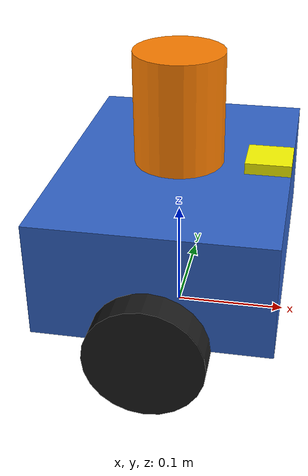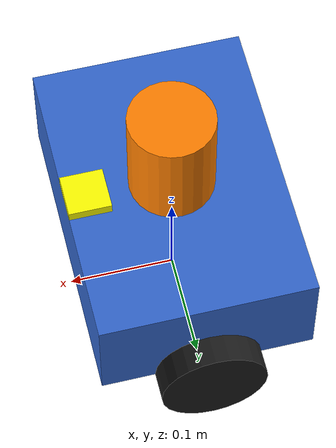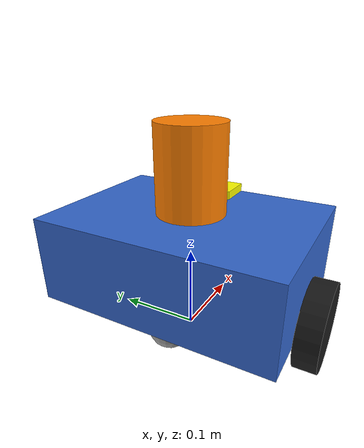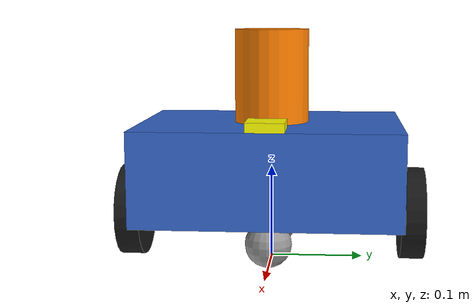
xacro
<?xml version="1.0"?>
<robot name="diff-drive-bot" xmlns:xacro="http://www.ros.org/wiki/xacro">

    <xacro:include filename="$(find robot_description)/urdf/properties.xacro" />
    <xacro:include filename="$(find robot_description)/urdf/inertia.xacro" />

    <!-- LINKS -->
    <link name="base_footprint" />
    <link name="base_link">
        <visual>
            <origin xyz="0 0 ${chassis_height/2}" rpy="0 0 0" />
            <geometry>
                <box size="${chassis_length} ${chassis_width} ${chassis_height}" />
            </geometry>
            <material name="blue_acrylic" />
        </visual>
        <collision>
            <origin xyz="0 0 ${chassis_height/2}" rpy="0 0 0" />
            <geometry>
                <box size="${chassis_length} ${chassis_width} ${chassis_height}" />
            </geometry>
        </collision>
        <xacro:box_inertia m="${chassis_mass}"
                            x="${chassis_length}"
                            y="${chassis_width}"
                            z="${chassis_height}" />
    </link>

    <link name="left_wheel_link">
        <visual>
            <origin xyz="0 0 0" rpy="${pi/2} 0 0" />
            <geometry>
                <cylinder radius="${wheel_radius}" length="${wheel_width}" />
            </geometry>
            <material name="black_rubber" />
        </visual>
        <collision>
            <origin xyz="0 0 0" rpy="${pi/2} 0 0" />
            <geometry>
                <cylinder radius="${wheel_radius}" length="${wheel_width}" />
            </geometry>
        </collision>
        <xacro:wheel_inertia m="${wheel_mass}" r="${wheel_radius}" h="${wheel_width}" />
    </link>

    <link name="right_wheel_link">
        <visual>
            <origin xyz="0 0 0" rpy="${pi/2} 0 0" />
            <geometry>
                <cylinder radius="${wheel_radius}" length="${wheel_width}" />
            </geometry>
            <material name="black_rubber" />
        </visual>
        <collision>
            <origin xyz="0 0 0" rpy="${pi/2} 0 0" />
            <geometry>
                <cylinder radius="${wheel_radius}" length="${wheel_width}" />
            </geometry>
        </collision>
        <xacro:wheel_inertia m="${wheel_mass}" r="${wheel_radius}" h="${wheel_width}" />
    </link>

    <link name="front_caster_wheel_link">
        <visual>
            <origin xyz="0 0 0" rpy="0 0 0" />
            <geometry>
                <sphere radius="${caster_radius}" />
            </geometry>
            <material name="grey_caster" />
        </visual>
        <collision>
            <origin xyz="0 0 0" rpy="0 0 0" />
            <geometry>
                <sphere radius="${caster_radius}" />
            </geometry>
        </collision>
        <xacro:sphere_inertia m="${caster_mass}" r="${caster_radius}" />
    </link>

    <link name="rear_caster_wheel_link">
        <visual>
            <origin xyz="0 0 0" rpy="0 0 0" />
            <geometry>
                <sphere radius="${caster_radius}" />
            </geometry>
            <material name="grey_caster" />
        </visual>
        <collision>
            <origin xyz="0 0 0" rpy="0 0 0" />
            <geometry>
                <sphere radius="${caster_radius}" />
            </geometry>
        </collision>
        <xacro:sphere_inertia m="${caster_mass}" r="${caster_radius}" />
    </link>

    <!-- JOINTS -->
    <joint name="base_to_footprint" type="fixed">
        <parent link="base_footprint"/>
        <child link="base_link"/>
        <origin xyz="0 0 ${wheel_radius}" rpy="0 0 0"/>
    </joint>

    <joint name="base_to_left_wheel_joint" type="continuous">
        <parent link="base_link"/>
        <child link="left_wheel_link"/>
        <origin xyz="0 ${chassis_width/2+wheel_width/2} 0" rpy="0 0 0"/>
        <axis xyz="0 1 0"/>
    </joint>

    <joint name="base_to_right_wheel_joint" type="continuous">
        <parent link="base_link"/>
        <child link="right_wheel_link"/>
        <origin xyz="0 ${-chassis_width/2-wheel_width/2} 0" rpy="0 0 0"/>
        <axis xyz="0 1 0"/>
    </joint>

    <joint name="base_to_front_caster_wheel_joint" type="fixed">
        <parent link="base_link"/>
        <child link="front_caster_wheel_link"/>
        <origin xyz="${chassis_length/4} 0 ${-caster_radius}" rpy="0 0 0"/>
    </joint>

    <joint name="base_to_rear_caster_wheel_joint" type="fixed">
        <parent link="base_link"/>
        <child link="rear_caster_wheel_link"/>
        <origin xyz="${-chassis_length/4} 0 ${-caster_radius}" rpy="0 0 0"/>
    </joint>

    <!-- LiDAR -->
    <xacro:include filename="$(find robot_description)/urdf/lidar.xacro" />

    <!-- IMU -->
    <xacro:include filename="$(find robot_description)/urdf/imu.xacro" />

    <!-- GAZEBO SETUP: Plugin Configuration -->
    <xacro:include filename="$(find robot_description)/urdf/gazebo_setup.xacro" />
    <!-- ROS2 Control SETUP: -->
    <xacro:include filename="$(find robot_description)/urdf/ros2_control_setup.xacro" />
</robot>

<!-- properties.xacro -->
<robot xmlns:xacro="http://www.ros.org/wiki/xacro">
<!-- PROPERTIES -->
    <!-- Chassis box dimensions -->
    <xacro:property name="chassis_length"   value="0.20"/>  <!-- X: front to back -->
    <xacro:property name="chassis_width"    value="0.28"/>  <!-- Y: left to right -->
    <xacro:property name="chassis_height"   value="0.10"/>  <!-- Z: bottom to top -->

    <!-- Wheel dimensions -->
    <xacro:property name="wheel_radius"     value="0.050"/>
    <xacro:property name="wheel_width"      value="0.026"/>
    <xacro:property name="wheel_separation" value="0.306"/>

    <!-- Caster wheel -->
    <xacro:property name="caster_radius"    value="0.025"/>

    <!-- LiDAR -->
    <xacro:property name="lidar_radius"     value="0.04"/>
    <xacro:property name="lidar_height"     value="0.1"/>

    <!-- IMU -->
    <xacro:property name="imu_length" value="0.04"/>
    <xacro:property name="imu_height" value="0.01"/>

    <!-- Mass values (kg) -->
    <xacro:property name="chassis_mass"     value="3"/>
    <xacro:property name="wheel_mass"       value="0.12"/>
    <xacro:property name="caster_mass"      value="0.02"/>

<!-- MATERIALS -->
    <material name="blue_acrylic">
        <color rgba="0.2 0.4 0.8 1.0"/>
    </material>

    <material name="black_rubber">
        <color rgba="0.1 0.1 0.1 1.0"/>
    </material>

    <material name="grey_caster">
        <color rgba="0.6 0.6 0.6 1.0"/>
    </material>

    <material name="orange">
        <color rgba="1.0 0.5 0.0 1.0"/>
    </material>

    <material name="yellow">
        <color rgba="1.0 1.0 0.0 1.0"/>
    </material>

</robot>

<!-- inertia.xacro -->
<robot xmlns:xacro="http://www.ros.org/wiki/xacro">

    <xacro:macro name="box_inertia" params="m x y z">
        <inertial>
            <origin xyz="0 0 0" rpy="0 0 0"/>
            <mass value="${m}"/>
            <inertia
                ixx="${m/12.0 * (y*y + z*z)}"  ixy="0.0"  ixz="0.0"
                iyy="${m/12.0 * (x*x + z*z)}"  iyz="0.0"
                izz="${m/12.0 * (x*x + y*y)}"/>
        </inertial>
    </xacro:macro>

    <xacro:macro name="cylinder_inertia" params="m r h">
        <inertial>
            <origin xyz="0 0 0" rpy="0 0 0"/>
            <mass value="${m}"/>
            <inertia
                ixx="${m/12.0 * (3*r*r + h*h)}"  ixy="0.0"  ixz="0.0"
                iyy="${m/12.0 * (3*r*r + h*h)}"  iyz="0.0"
                izz="${m/2.0  * (r*r)}"/>
        </inertial>
    </xacro:macro>

    <xacro:macro name="wheel_inertia" params="m r h">
        <inertial>
            <origin xyz="0 0 0" rpy="0 0 0"/>
            <mass value="${m}"/>
            <inertia
                ixx="${m/12.0 * (3*r*r + h*h)}"  ixy="0.0"  ixz="0.0"
                izz="${m/12.0 * (3*r*r + h*h)}"  iyz="0.0"
                iyy="${m/2.0  * (r*r)}"/>
        </inertial>
    </xacro:macro>

    <xacro:macro name="sphere_inertia" params="m r">
        <inertial>
            <origin xyz="0 0 0" rpy="0 0 0"/>
            <mass value="${m}"/>
            <inertia
                ixx="${2.0/5.0 * m * r * r}"  ixy="0.0"  ixz="0.0"
                iyy="${2.0/5.0 * m * r * r}"  iyz="0.0"
                izz="${2.0/5.0 * m * r * r}"/>
        </inertial>
    </xacro:macro>
</robot>

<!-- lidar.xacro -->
<robot xmlns:xacro="http://www.ros.org/wiki/xacro">

    <!-- LiDAR Link -->
    <link name="lidar_link">
        <visual>
            <origin xyz="0 0 0" rpy="0 0 0" />
            <geometry>
                <cylinder radius="${lidar_radius}" length="${lidar_height}" />
            </geometry>
            <material name="orange" />
        </visual>
        <collision>
            <origin xyz="0 0 0" rpy="0 0 0" />
            <geometry>
                <cylinder radius="${lidar_radius}" length="${lidar_height}" />
            </geometry>
        </collision>
        <xacro:cylinder_inertia m="0.1" r="${lidar_radius}" h="${lidar_height}" />
    </link>

    <!-- LiDAR Joint -->
    <joint name="lidar_joint" type="fixed">
        <parent link="base_link"/>
        <child link="lidar_link"/>
        <origin xyz="0 0 ${chassis_height + lidar_height/2}" rpy="0 0 0"/>
    </joint>
</robot>

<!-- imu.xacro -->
<robot xmlns:xacro="http://www.ros.org/wiki/xacro">

    <!-- IMU Link -->
    <link name="imu_link">
        <visual>
            <origin xyz="0 0 0" rpy="0 0 0" />
            <geometry>
                <box size="${imu_length} ${imu_length} ${imu_height}" />
            </geometry>
            <material name="yellow" />
        </visual>
        <collision>
            <origin xyz="0 0 0" rpy="0 0 0" />
            <geometry>
                <box size="${imu_length} ${imu_length} ${imu_height}" />
            </geometry>
        </collision>
        <xacro:box_inertia m="0.02"
                            x="${imu_length}"
                            y="${imu_length}"
                            z="${imu_height}" />
    </link>

    <!-- IMU Joint -->
    <joint name="imu_joint" type="fixed">
        <parent link="base_link"/>
        <child link="imu_link"/>
        <origin xyz="${chassis_length/2 - imu_length/2} 0 ${chassis_height + imu_height/2}" rpy="0 0 0"/>
    </joint>
</robot>
